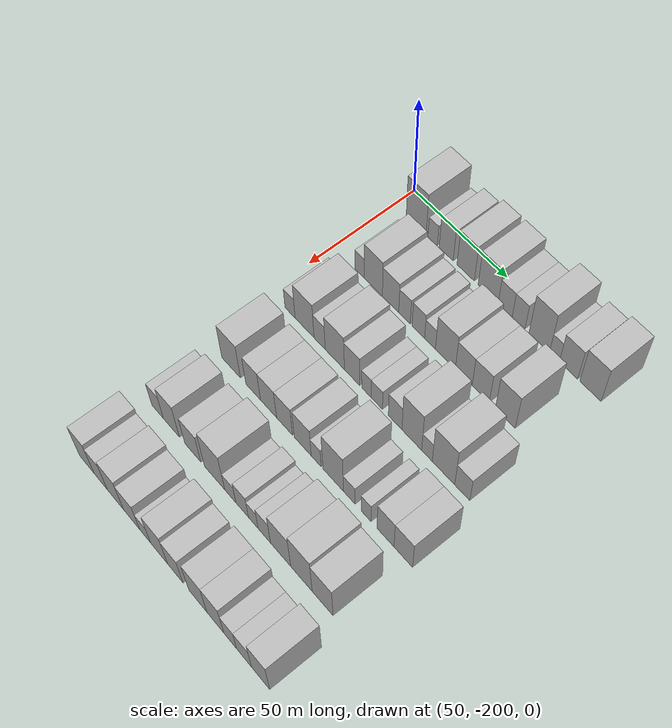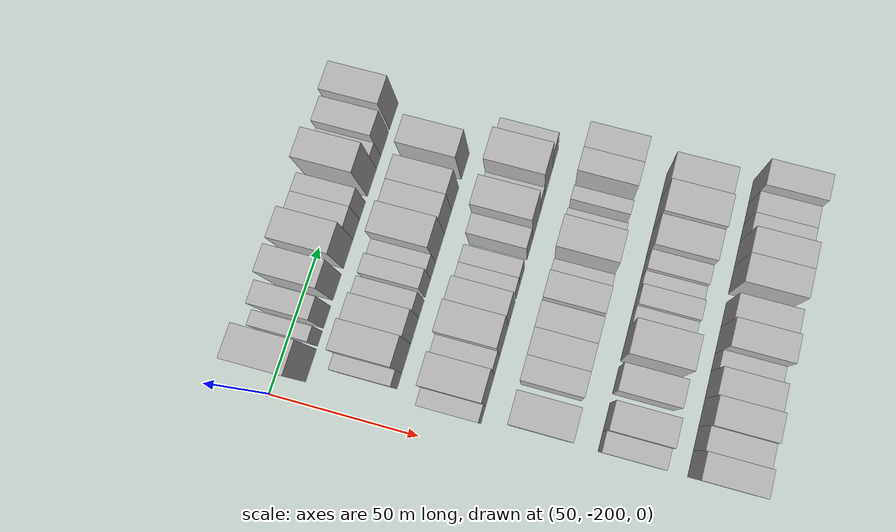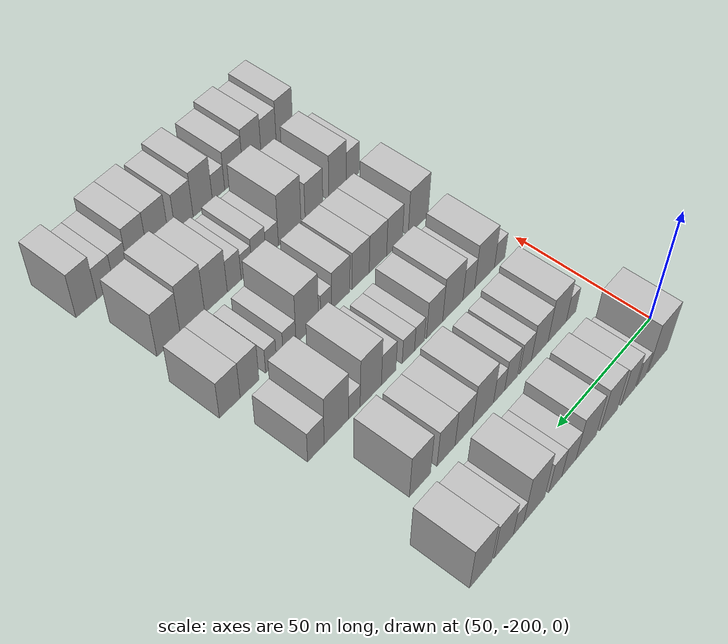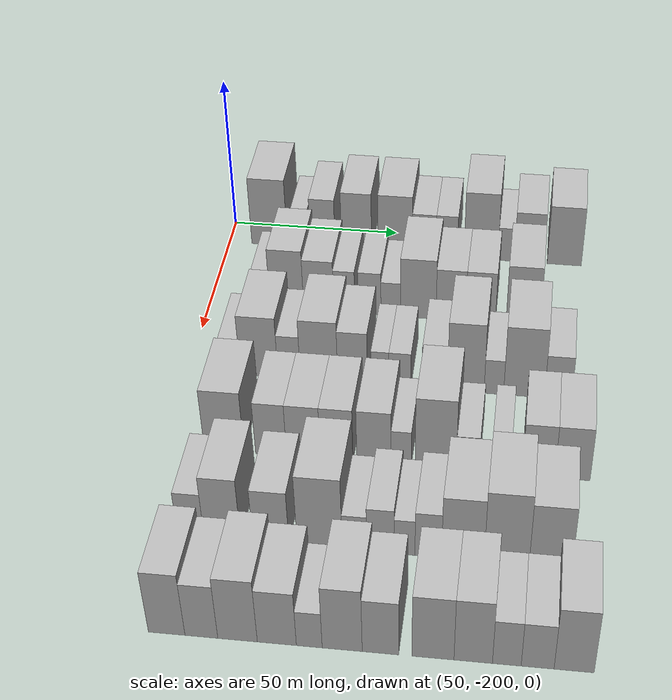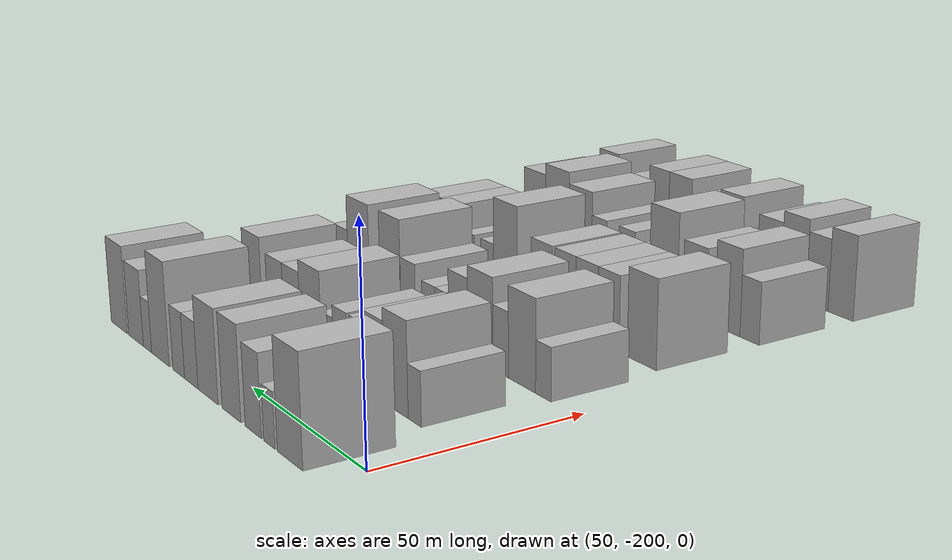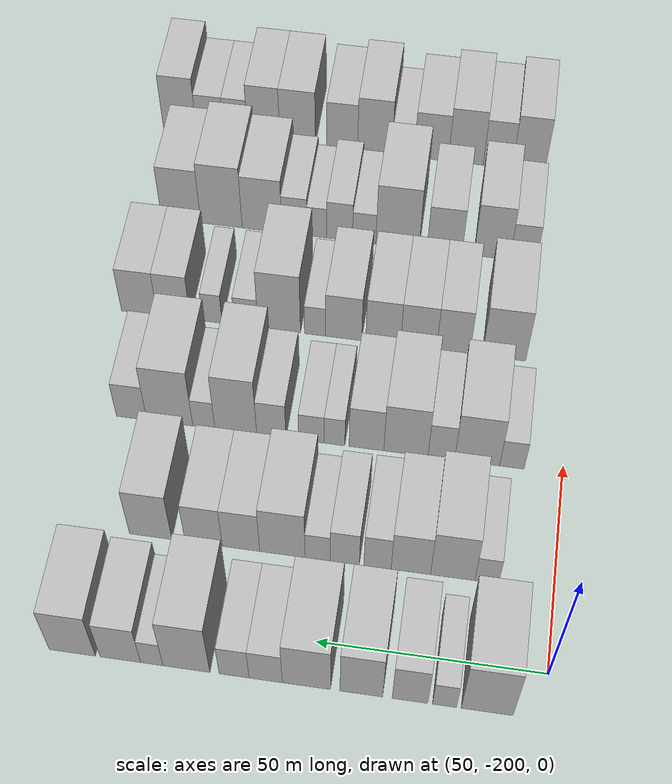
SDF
<sdf version="1.6">
 <world name="default">
  <model name="building_35">
   <static>1</static>
   <pose>50.0000 -187.7629 0 0.000000 0.000000 0.000000</pose>
   <link name="link">
    <pose>0 0 12.00 0 0 0</pose>
    <collision name="collision"><geometry><box><size>20.0000 10.9252 24.0000</size></box></geometry></collision>
    <visual name="visual">
     <cast_shadows>0</cast_shadows>
     <geometry><box><size>20.0000 10.9252 24.0000</size></box></geometry>
     <material>
      <script>
       <uri>model://HANNAS_wall/materials/scripts</uri>
       <uri>model://HANNAS_wall/materials/textures</uri>
       <name>vrc/HANNAS_wall</name>
      </script>
     </material>
    </visual>
   </link>
  </model>
  <model name="building_36">
   <static>1</static>
   <pose>50.0000 -178.7702 0 0.000000 0.000000 0.000000</pose>
   <link name="link">
    <pose>0 0 6.00 0 0 0</pose>
    <collision name="collision"><geometry><box><size>20.0000 5.0601 12.0000</size></box></geometry></collision>
    <visual name="visual">
     <cast_shadows>0</cast_shadows>
     <geometry><box><size>20.0000 5.0601 12.0000</size></box></geometry>
     <material>
      <script>
       <uri>model://HANNAS_wall/materials/scripts</uri>
       <uri>model://HANNAS_wall/materials/textures</uri>
       <name>vrc/HANNAS_wall</name>
      </script>
     </material>
    </visual>
   </link>
  </model>
  <model name="building_37">
   <static>1</static>
   <pose>50.0000 -171.4633 0 0.000000 0.000000 0.000000</pose>
   <link name="link">
    <pose>0 0 9.00 0 0 0</pose>
    <collision name="collision"><geometry><box><size>20.0000 7.5538 18.0000</size></box></geometry></collision>
    <visual name="visual">
     <cast_shadows>0</cast_shadows>
     <geometry><box><size>20.0000 7.5538 18.0000</size></box></geometry>
     <material>
      <script>
       <uri>model://HANNAS_wall/materials/scripts</uri>
       <uri>model://HANNAS_wall/materials/textures</uri>
       <name>vrc/HANNAS_wall</name>
      </script>
     </material>
    </visual>
   </link>
  </model>
  <model name="building_38">
   <static>1</static>
   <pose>50.0000 -161.1294 0 0.000000 0.000000 0.000000</pose>
   <link name="link">
    <pose>0 0 10.50 0 0 0</pose>
    <collision name="collision"><geometry><box><size>20.0000 9.1141 21.0000</size></box></geometry></collision>
    <visual name="visual">
     <cast_shadows>0</cast_shadows>
     <geometry><box><size>20.0000 9.1141 21.0000</size></box></geometry>
     <material>
      <script>
       <uri>model://HANNAS_wall/materials/scripts</uri>
       <uri>model://HANNAS_wall/materials/textures</uri>
       <name>vrc/HANNAS_wall</name>
      </script>
     </material>
    </visual>
   </link>
  </model>
  <model name="building_39">
   <static>1</static>
   <pose>50.0000 -149.4049 0 0.000000 0.000000 0.000000</pose>
   <link name="link">
    <pose>0 0 10.50 0 0 0</pose>
    <collision name="collision"><geometry><box><size>20.0000 10.3349 21.0000</size></box></geometry></collision>
    <visual name="visual">
     <cast_shadows>0</cast_shadows>
     <geometry><box><size>20.0000 10.3349 21.0000</size></box></geometry>
     <material>
      <script>
       <uri>model://HANNAS_wall/materials/scripts</uri>
       <uri>model://HANNAS_wall/materials/textures</uri>
       <name>vrc/HANNAS_wall</name>
      </script>
     </material>
    </visual>
   </link>
  </model>
  <model name="building_40">
   <static>1</static>
   <pose>50.0000 -140.6643 0 0.000000 0.000000 0.000000</pose>
   <link name="link">
    <pose>0 0 7.50 0 0 0</pose>
    <collision name="collision"><geometry><box><size>20.0000 7.1463 15.0000</size></box></geometry></collision>
    <visual name="visual">
     <cast_shadows>0</cast_shadows>
     <geometry><box><size>20.0000 7.1463 15.0000</size></box></geometry>
     <material>
      <script>
       <uri>model://HANNAS_wall/materials/scripts</uri>
       <uri>model://HANNAS_wall/materials/textures</uri>
       <name>vrc/HANNAS_wall</name>
      </script>
     </material>
    </visual>
   </link>
  </model>
  <model name="building_41">
   <static>1</static>
   <pose>50.0000 -133.8740 0 0.000000 0.000000 0.000000</pose>
   <link name="link">
    <pose>0 0 7.50 0 0 0</pose>
    <collision name="collision"><geometry><box><size>20.0000 6.4342 15.0000</size></box></geometry></collision>
    <visual name="visual">
     <cast_shadows>0</cast_shadows>
     <geometry><box><size>20.0000 6.4342 15.0000</size></box></geometry>
     <material>
      <script>
       <uri>model://HANNAS_wall/materials/scripts</uri>
       <uri>model://HANNAS_wall/materials/textures</uri>
       <name>vrc/HANNAS_wall</name>
      </script>
     </material>
    </visual>
   </link>
  </model>
  <model name="building_42">
   <static>1</static>
   <pose>50.0000 -123.5805 0 0.000000 0.000000 0.000000</pose>
   <link name="link">
    <pose>0 0 12.00 0 0 0</pose>
    <collision name="collision"><geometry><box><size>20.0000 10.1528 24.0000</size></box></geometry></collision>
    <visual name="visual">
     <cast_shadows>0</cast_shadows>
     <geometry><box><size>20.0000 10.1528 24.0000</size></box></geometry>
     <material>
      <script>
       <uri>model://HANNAS_wall/materials/scripts</uri>
       <uri>model://HANNAS_wall/materials/textures</uri>
       <name>vrc/HANNAS_wall</name>
      </script>
     </material>
    </visual>
   </link>
  </model>
  <model name="building_43">
   <static>1</static>
   <pose>50.0000 -116.0681 0 0.000000 0.000000 0.000000</pose>
   <link name="link">
    <pose>0 0 6.00 0 0 0</pose>
    <collision name="collision"><geometry><box><size>20.0000 4.8721 12.0000</size></box></geometry></collision>
    <visual name="visual">
     <cast_shadows>0</cast_shadows>
     <geometry><box><size>20.0000 4.8721 12.0000</size></box></geometry>
     <material>
      <script>
       <uri>model://HANNAS_wall/materials/scripts</uri>
       <uri>model://HANNAS_wall/materials/textures</uri>
       <name>vrc/HANNAS_wall</name>
      </script>
     </material>
    </visual>
   </link>
  </model>
  <model name="building_44">
   <static>1</static>
   <pose>50.0000 -109.1987 0 0.000000 0.000000 0.000000</pose>
   <link name="link">
    <pose>0 0 9.00 0 0 0</pose>
    <collision name="collision"><geometry><box><size>20.0000 8.8667 18.0000</size></box></geometry></collision>
    <visual name="visual">
     <cast_shadows>0</cast_shadows>
     <geometry><box><size>20.0000 8.8667 18.0000</size></box></geometry>
     <material>
      <script>
       <uri>model://HANNAS_wall/materials/scripts</uri>
       <uri>model://HANNAS_wall/materials/textures</uri>
       <name>vrc/HANNAS_wall</name>
      </script>
     </material>
    </visual>
   </link>
  </model>
  <model name="building_45">
   <static>1</static>
   <pose>50.0000 -98.6974 0 0.000000 0.000000 0.000000</pose>
   <link name="link">
    <pose>0 0 10.50 0 0 0</pose>
    <collision name="collision"><geometry><box><size>20.0000 10.1359 21.0000</size></box></geometry></collision>
    <visual name="visual">
     <cast_shadows>0</cast_shadows>
     <geometry><box><size>20.0000 10.1359 21.0000</size></box></geometry>
     <material>
      <script>
       <uri>model://HANNAS_wall/materials/scripts</uri>
       <uri>model://HANNAS_wall/materials/textures</uri>
       <name>vrc/HANNAS_wall</name>
      </script>
     </material>
    </visual>
   </link>
  </model>
  <model name="building_149">
   <static>1</static>
   <pose>79.0000 -185.0536 0 0.000000 0.000000 0.000000</pose>
   <link name="link">
    <pose>0 0 6.00 0 0 0</pose>
    <collision name="collision"><geometry><box><size>20.0000 5.2560 12.0000</size></box></geometry></collision>
    <visual name="visual">
     <cast_shadows>0</cast_shadows>
     <geometry><box><size>20.0000 5.2560 12.0000</size></box></geometry>
     <material>
      <script>
       <uri>model://HANNAS_wall/materials/scripts</uri>
       <uri>model://HANNAS_wall/materials/textures</uri>
       <name>vrc/HANNAS_wall</name>
      </script>
     </material>
    </visual>
   </link>
  </model>
  <model name="building_150">
   <static>1</static>
   <pose>79.0000 -177.5264 0 0.000000 0.000000 0.000000</pose>
   <link name="link">
    <pose>0 0 10.50 0 0 0</pose>
    <collision name="collision"><geometry><box><size>20.0000 9.7983 21.0000</size></box></geometry></collision>
    <visual name="visual">
     <cast_shadows>0</cast_shadows>
     <geometry><box><size>20.0000 9.7983 21.0000</size></box></geometry>
     <material>
      <script>
       <uri>model://HANNAS_wall/materials/scripts</uri>
       <uri>model://HANNAS_wall/materials/textures</uri>
       <name>vrc/HANNAS_wall</name>
      </script>
     </material>
    </visual>
   </link>
  </model>
  <model name="building_151">
   <static>1</static>
   <pose>79.0000 -168.2551 0 0.000000 0.000000 0.000000</pose>
   <link name="link">
    <pose>0 0 9.00 0 0 0</pose>
    <collision name="collision"><geometry><box><size>20.0000 8.7443 18.0000</size></box></geometry></collision>
    <visual name="visual">
     <cast_shadows>0</cast_shadows>
     <geometry><box><size>20.0000 8.7443 18.0000</size></box></geometry>
     <material>
      <script>
       <uri>model://HANNAS_wall/materials/scripts</uri>
       <uri>model://HANNAS_wall/materials/textures</uri>
       <name>vrc/HANNAS_wall</name>
      </script>
     </material>
    </visual>
   </link>
  </model>
  <model name="building_152">
   <static>1</static>
   <pose>79.0000 -160.8396 0 0.000000 0.000000 0.000000</pose>
   <link name="link">
    <pose>0 0 7.50 0 0 0</pose>
    <collision name="collision"><geometry><box><size>20.0000 6.0868 15.0000</size></box></geometry></collision>
    <visual name="visual">
     <cast_shadows>0</cast_shadows>
     <geometry><box><size>20.0000 6.0868 15.0000</size></box></geometry>
     <material>
      <script>
       <uri>model://HANNAS_wall/materials/scripts</uri>
       <uri>model://HANNAS_wall/materials/textures</uri>
       <name>vrc/HANNAS_wall</name>
      </script>
     </material>
    </visual>
   </link>
  </model>
  <model name="building_153">
   <static>1</static>
   <pose>79.0000 -153.5303 0 0.000000 0.000000 0.000000</pose>
   <link name="link">
    <pose>0 0 7.50 0 0 0</pose>
    <collision name="collision"><geometry><box><size>20.0000 6.5317 15.0000</size></box></geometry></collision>
    <visual name="visual">
     <cast_shadows>0</cast_shadows>
     <geometry><box><size>20.0000 6.5317 15.0000</size></box></geometry>
     <material>
      <script>
       <uri>model://HANNAS_wall/materials/scripts</uri>
       <uri>model://HANNAS_wall/materials/textures</uri>
       <name>vrc/HANNAS_wall</name>
      </script>
     </material>
    </visual>
   </link>
  </model>
  <model name="building_154">
   <static>1</static>
   <pose>79.0000 -147.4696 0 0.000000 0.000000 0.000000</pose>
   <link name="link">
    <pose>0 0 6.00 0 0 0</pose>
    <collision name="collision"><geometry><box><size>20.0000 5.5898 12.0000</size></box></geometry></collision>
    <visual name="visual">
     <cast_shadows>0</cast_shadows>
     <geometry><box><size>20.0000 5.5898 12.0000</size></box></geometry>
     <material>
      <script>
       <uri>model://HANNAS_wall/materials/scripts</uri>
       <uri>model://HANNAS_wall/materials/textures</uri>
       <name>vrc/HANNAS_wall</name>
      </script>
     </material>
    </visual>
   </link>
  </model>
  <model name="building_155">
   <static>1</static>
   <pose>79.0000 -139.5721 0 0.000000 0.000000 0.000000</pose>
   <link name="link">
    <pose>0 0 10.50 0 0 0</pose>
    <collision name="collision"><geometry><box><size>20.0000 10.2052 21.0000</size></box></geometry></collision>
    <visual name="visual">
     <cast_shadows>0</cast_shadows>
     <geometry><box><size>20.0000 10.2052 21.0000</size></box></geometry>
     <material>
      <script>
       <uri>model://HANNAS_wall/materials/scripts</uri>
       <uri>model://HANNAS_wall/materials/textures</uri>
       <name>vrc/HANNAS_wall</name>
      </script>
     </material>
    </visual>
   </link>
  </model>
  <model name="building_156">
   <static>1</static>
   <pose>79.0000 -130.2316 0 0.000000 0.000000 0.000000</pose>
   <link name="link">
    <pose>0 0 9.00 0 0 0</pose>
    <collision name="collision"><geometry><box><size>20.0000 8.4758 18.0000</size></box></geometry></collision>
    <visual name="visual">
     <cast_shadows>0</cast_shadows>
     <geometry><box><size>20.0000 8.4758 18.0000</size></box></geometry>
     <material>
      <script>
       <uri>model://HANNAS_wall/materials/scripts</uri>
       <uri>model://HANNAS_wall/materials/textures</uri>
       <name>vrc/HANNAS_wall</name>
      </script>
     </material>
    </visual>
   </link>
  </model>
  <model name="building_157">
   <static>1</static>
   <pose>79.0000 -121.7674 0 0.000000 0.000000 0.000000</pose>
   <link name="link">
    <pose>0 0 9.00 0 0 0</pose>
    <collision name="collision"><geometry><box><size>20.0000 8.4525 18.0000</size></box></geometry></collision>
    <visual name="visual">
     <cast_shadows>0</cast_shadows>
     <geometry><box><size>20.0000 8.4525 18.0000</size></box></geometry>
     <material>
      <script>
       <uri>model://HANNAS_wall/materials/scripts</uri>
       <uri>model://HANNAS_wall/materials/textures</uri>
       <name>vrc/HANNAS_wall</name>
      </script>
     </material>
    </visual>
   </link>
  </model>
  <model name="building_158">
   <static>1</static>
   <pose>79.0000 -109.7116 0 0.000000 0.000000 0.000000</pose>
   <link name="link">
    <pose>0 0 10.50 0 0 0</pose>
    <collision name="collision"><geometry><box><size>20.0000 9.6591 21.0000</size></box></geometry></collision>
    <visual name="visual">
     <cast_shadows>0</cast_shadows>
     <geometry><box><size>20.0000 9.6591 21.0000</size></box></geometry>
     <material>
      <script>
       <uri>model://HANNAS_wall/materials/scripts</uri>
       <uri>model://HANNAS_wall/materials/textures</uri>
       <name>vrc/HANNAS_wall</name>
      </script>
     </material>
    </visual>
   </link>
  </model>
  <model name="building_254">
   <static>1</static>
   <pose>108.0000 -188.2646 0 0.000000 0.000000 0.000000</pose>
   <link name="link">
    <pose>0 0 6.00 0 0 0</pose>
    <collision name="collision"><geometry><box><size>20.0000 5.6431 12.0000</size></box></geometry></collision>
    <visual name="visual">
     <cast_shadows>0</cast_shadows>
     <geometry><box><size>20.0000 5.6431 12.0000</size></box></geometry>
     <material>
      <script>
       <uri>model://HANNAS_wall/materials/scripts</uri>
       <uri>model://HANNAS_wall/materials/textures</uri>
       <name>vrc/HANNAS_wall</name>
      </script>
     </material>
    </visual>
   </link>
  </model>
  <model name="building_255">
   <static>1</static>
   <pose>108.0000 -180.2350 0 0.000000 0.000000 0.000000</pose>
   <link name="link">
    <pose>0 0 10.50 0 0 0</pose>
    <collision name="collision"><geometry><box><size>20.0000 10.4162 21.0000</size></box></geometry></collision>
    <visual name="visual">
     <cast_shadows>0</cast_shadows>
     <geometry><box><size>20.0000 10.4162 21.0000</size></box></geometry>
     <material>
      <script>
       <uri>model://HANNAS_wall/materials/scripts</uri>
       <uri>model://HANNAS_wall/materials/textures</uri>
       <name>vrc/HANNAS_wall</name>
      </script>
     </material>
    </visual>
   </link>
  </model>
  <model name="building_256">
   <static>1</static>
   <pose>108.0000 -171.9533 0 0.000000 0.000000 0.000000</pose>
   <link name="link">
    <pose>0 0 7.50 0 0 0</pose>
    <collision name="collision"><geometry><box><size>20.0000 6.1472 15.0000</size></box></geometry></collision>
    <visual name="visual">
     <cast_shadows>0</cast_shadows>
     <geometry><box><size>20.0000 6.1472 15.0000</size></box></geometry>
     <material>
      <script>
       <uri>model://HANNAS_wall/materials/scripts</uri>
       <uri>model://HANNAS_wall/materials/textures</uri>
       <name>vrc/HANNAS_wall</name>
      </script>
     </material>
    </visual>
   </link>
  </model>
  <model name="building_257">
   <static>1</static>
   <pose>108.0000 -163.7430 0 0.000000 0.000000 0.000000</pose>
   <link name="link">
    <pose>0 0 10.50 0 0 0</pose>
    <collision name="collision"><geometry><box><size>20.0000 10.2735 21.0000</size></box></geometry></collision>
    <visual name="visual">
     <cast_shadows>0</cast_shadows>
     <geometry><box><size>20.0000 10.2735 21.0000</size></box></geometry>
     <material>
      <script>
       <uri>model://HANNAS_wall/materials/scripts</uri>
       <uri>model://HANNAS_wall/materials/textures</uri>
       <name>vrc/HANNAS_wall</name>
      </script>
     </material>
    </visual>
   </link>
  </model>
  <model name="building_258">
   <static>1</static>
   <pose>108.0000 -154.5478 0 0.000000 0.000000 0.000000</pose>
   <link name="link">
    <pose>0 0 9.00 0 0 0</pose>
    <collision name="collision"><geometry><box><size>20.0000 8.1169 18.0000</size></box></geometry></collision>
    <visual name="visual">
     <cast_shadows>0</cast_shadows>
     <geometry><box><size>20.0000 8.1169 18.0000</size></box></geometry>
     <material>
      <script>
       <uri>model://HANNAS_wall/materials/scripts</uri>
       <uri>model://HANNAS_wall/materials/textures</uri>
       <name>vrc/HANNAS_wall</name>
      </script>
     </material>
    </visual>
   </link>
  </model>
  <model name="building_259">
   <static>1</static>
   <pose>108.0000 -147.0676 0 0.000000 0.000000 0.000000</pose>
   <link name="link">
    <pose>0 0 6.00 0 0 0</pose>
    <collision name="collision"><geometry><box><size>20.0000 4.8435 12.0000</size></box></geometry></collision>
    <visual name="visual">
     <cast_shadows>0</cast_shadows>
     <geometry><box><size>20.0000 4.8435 12.0000</size></box></geometry>
     <material>
      <script>
       <uri>model://HANNAS_wall/materials/scripts</uri>
       <uri>model://HANNAS_wall/materials/textures</uri>
       <name>vrc/HANNAS_wall</name>
      </script>
     </material>
    </visual>
   </link>
  </model>
  <model name="building_260">
   <static>1</static>
   <pose>108.0000 -141.6626 0 0.000000 0.000000 0.000000</pose>
   <link name="link">
    <pose>0 0 6.00 0 0 0</pose>
    <collision name="collision"><geometry><box><size>20.0000 5.9664 12.0000</size></box></geometry></collision>
    <visual name="visual">
     <cast_shadows>0</cast_shadows>
     <geometry><box><size>20.0000 5.9664 12.0000</size></box></geometry>
     <material>
      <script>
       <uri>model://HANNAS_wall/materials/scripts</uri>
       <uri>model://HANNAS_wall/materials/textures</uri>
       <name>vrc/HANNAS_wall</name>
      </script>
     </material>
    </visual>
   </link>
  </model>
  <model name="building_261">
   <static>1</static>
   <pose>108.0000 -132.2307 0 0.000000 0.000000 0.000000</pose>
   <link name="link">
    <pose>0 0 7.50 0 0 0</pose>
    <collision name="collision"><geometry><box><size>20.0000 6.8974 15.0000</size></box></geometry></collision>
    <visual name="visual">
     <cast_shadows>0</cast_shadows>
     <geometry><box><size>20.0000 6.8974 15.0000</size></box></geometry>
     <material>
      <script>
       <uri>model://HANNAS_wall/materials/scripts</uri>
       <uri>model://HANNAS_wall/materials/textures</uri>
       <name>vrc/HANNAS_wall</name>
      </script>
     </material>
    </visual>
   </link>
  </model>
  <model name="building_262">
   <static>1</static>
   <pose>108.0000 -123.8345 0 0.000000 0.000000 0.000000</pose>
   <link name="link">
    <pose>0 0 12.00 0 0 0</pose>
    <collision name="collision"><geometry><box><size>20.0000 9.8950 24.0000</size></box></geometry></collision>
    <visual name="visual">
     <cast_shadows>0</cast_shadows>
     <geometry><box><size>20.0000 9.8950 24.0000</size></box></geometry>
     <material>
      <script>
       <uri>model://HANNAS_wall/materials/scripts</uri>
       <uri>model://HANNAS_wall/materials/textures</uri>
       <name>vrc/HANNAS_wall</name>
      </script>
     </material>
    </visual>
   </link>
  </model>
  <model name="building_263">
   <static>1</static>
   <pose>108.0000 -116.2601 0 0.000000 0.000000 0.000000</pose>
   <link name="link">
    <pose>0 0 6.00 0 0 0</pose>
    <collision name="collision"><geometry><box><size>20.0000 5.2538 12.0000</size></box></geometry></collision>
    <visual name="visual">
     <cast_shadows>0</cast_shadows>
     <geometry><box><size>20.0000 5.2538 12.0000</size></box></geometry>
     <material>
      <script>
       <uri>model://HANNAS_wall/materials/scripts</uri>
       <uri>model://HANNAS_wall/materials/textures</uri>
       <name>vrc/HANNAS_wall</name>
      </script>
     </material>
    </visual>
   </link>
  </model>
  <model name="building_264">
   <static>1</static>
   <pose>108.0000 -108.1545 0 0.000000 0.000000 0.000000</pose>
   <link name="link">
    <pose>0 0 12.00 0 0 0</pose>
    <collision name="collision"><geometry><box><size>20.0000 10.9574 24.0000</size></box></geometry></collision>
    <visual name="visual">
     <cast_shadows>0</cast_shadows>
     <geometry><box><size>20.0000 10.9574 24.0000</size></box></geometry>
     <material>
      <script>
       <uri>model://HANNAS_wall/materials/scripts</uri>
       <uri>model://HANNAS_wall/materials/textures</uri>
       <name>vrc/HANNAS_wall</name>
      </script>
     </material>
    </visual>
   </link>
  </model>
  <model name="building_265">
   <static>1</static>
   <pose>108.0000 -99.0480 0 0.000000 0.000000 0.000000</pose>
   <link name="link">
    <pose>0 0 7.50 0 0 0</pose>
    <collision name="collision"><geometry><box><size>20.0000 7.2558 15.0000</size></box></geometry></collision>
    <visual name="visual">
     <cast_shadows>0</cast_shadows>
     <geometry><box><size>20.0000 7.2558 15.0000</size></box></geometry>
     <material>
      <script>
       <uri>model://HANNAS_wall/materials/scripts</uri>
       <uri>model://HANNAS_wall/materials/textures</uri>
       <name>vrc/HANNAS_wall</name>
      </script>
     </material>
    </visual>
   </link>
  </model>
  <model name="building_360">
   <static>1</static>
   <pose>137.0000 -184.0254 0 0.000000 0.000000 0.000000</pose>
   <link name="link">
    <pose>0 0 10.50 0 0 0</pose>
    <collision name="collision"><geometry><box><size>20.0000 10.4275 21.0000</size></box></geometry></collision>
    <visual name="visual">
     <cast_shadows>0</cast_shadows>
     <geometry><box><size>20.0000 10.4275 21.0000</size></box></geometry>
     <material>
      <script>
       <uri>model://HANNAS_wall/materials/scripts</uri>
       <uri>model://HANNAS_wall/materials/textures</uri>
       <name>vrc/HANNAS_wall</name>
      </script>
     </material>
    </visual>
   </link>
  </model>
  <model name="building_361">
   <static>1</static>
   <pose>137.0000 -171.7844 0 0.000000 0.000000 0.000000</pose>
   <link name="link">
    <pose>0 0 9.00 0 0 0</pose>
    <collision name="collision"><geometry><box><size>20.0000 8.0544 18.0000</size></box></geometry></collision>
    <visual name="visual">
     <cast_shadows>0</cast_shadows>
     <geometry><box><size>20.0000 8.0544 18.0000</size></box></geometry>
     <material>
      <script>
       <uri>model://HANNAS_wall/materials/scripts</uri>
       <uri>model://HANNAS_wall/materials/textures</uri>
       <name>vrc/HANNAS_wall</name>
      </script>
     </material>
    </visual>
   </link>
  </model>
  <model name="building_362">
   <static>1</static>
   <pose>137.0000 -163.3893 0 0.000000 0.000000 0.000000</pose>
   <link name="link">
    <pose>0 0 9.00 0 0 0</pose>
    <collision name="collision"><geometry><box><size>20.0000 8.7358 18.0000</size></box></geometry></collision>
    <visual name="visual">
     <cast_shadows>0</cast_shadows>
     <geometry><box><size>20.0000 8.7358 18.0000</size></box></geometry>
     <material>
      <script>
       <uri>model://HANNAS_wall/materials/scripts</uri>
       <uri>model://HANNAS_wall/materials/textures</uri>
       <name>vrc/HANNAS_wall</name>
      </script>
     </material>
    </visual>
   </link>
  </model>
  <model name="building_363">
   <static>1</static>
   <pose>137.0000 -154.7800 0 0.000000 0.000000 0.000000</pose>
   <link name="link">
    <pose>0 0 9.00 0 0 0</pose>
    <collision name="collision"><geometry><box><size>20.0000 8.4828 18.0000</size></box></geometry></collision>
    <visual name="visual">
     <cast_shadows>0</cast_shadows>
     <geometry><box><size>20.0000 8.4828 18.0000</size></box></geometry>
     <material>
      <script>
       <uri>model://HANNAS_wall/materials/scripts</uri>
       <uri>model://HANNAS_wall/materials/textures</uri>
       <name>vrc/HANNAS_wall</name>
      </script>
     </material>
    </visual>
   </link>
  </model>
  <model name="building_364">
   <static>1</static>
   <pose>137.0000 -145.1321 0 0.000000 0.000000 0.000000</pose>
   <link name="link">
    <pose>0 0 9.00 0 0 0</pose>
    <collision name="collision"><geometry><box><size>20.0000 8.8131 18.0000</size></box></geometry></collision>
    <visual name="visual">
     <cast_shadows>0</cast_shadows>
     <geometry><box><size>20.0000 8.8131 18.0000</size></box></geometry>
     <material>
      <script>
       <uri>model://HANNAS_wall/materials/scripts</uri>
       <uri>model://HANNAS_wall/materials/textures</uri>
       <name>vrc/HANNAS_wall</name>
      </script>
     </material>
    </visual>
   </link>
  </model>
  <model name="building_365">
   <static>1</static>
   <pose>137.0000 -138.1507 0 0.000000 0.000000 0.000000</pose>
   <link name="link">
    <pose>0 0 6.00 0 0 0</pose>
    <collision name="collision"><geometry><box><size>20.0000 5.1497 12.0000</size></box></geometry></collision>
    <visual name="visual">
     <cast_shadows>0</cast_shadows>
     <geometry><box><size>20.0000 5.1497 12.0000</size></box></geometry>
     <material>
      <script>
       <uri>model://HANNAS_wall/materials/scripts</uri>
       <uri>model://HANNAS_wall/materials/textures</uri>
       <name>vrc/HANNAS_wall</name>
      </script>
     </material>
    </visual>
   </link>
  </model>
  <model name="building_366">
   <static>1</static>
   <pose>137.0000 -129.3474 0 0.000000 0.000000 0.000000</pose>
   <link name="link">
    <pose>0 0 12.00 0 0 0</pose>
    <collision name="collision"><geometry><box><size>20.0000 10.4568 24.0000</size></box></geometry></collision>
    <visual name="visual">
     <cast_shadows>0</cast_shadows>
     <geometry><box><size>20.0000 10.4568 24.0000</size></box></geometry>
     <material>
      <script>
       <uri>model://HANNAS_wall/materials/scripts</uri>
       <uri>model://HANNAS_wall/materials/textures</uri>
       <name>vrc/HANNAS_wall</name>
      </script>
     </material>
    </visual>
   </link>
  </model>
  <model name="building_367">
   <static>1</static>
   <pose>137.0000 -121.1845 0 0.000000 0.000000 0.000000</pose>
   <link name="link">
    <pose>0 0 6.00 0 0 0</pose>
    <collision name="collision"><geometry><box><size>20.0000 5.8690 12.0000</size></box></geometry></collision>
    <visual name="visual">
     <cast_shadows>0</cast_shadows>
     <geometry><box><size>20.0000 5.8690 12.0000</size></box></geometry>
     <material>
      <script>
       <uri>model://HANNAS_wall/materials/scripts</uri>
       <uri>model://HANNAS_wall/materials/textures</uri>
       <name>vrc/HANNAS_wall</name>
      </script>
     </material>
    </visual>
   </link>
  </model>
  <model name="building_368">
   <static>1</static>
   <pose>137.0000 -112.8129 0 0.000000 0.000000 0.000000</pose>
   <link name="link">
    <pose>0 0 6.00 0 0 0</pose>
    <collision name="collision"><geometry><box><size>20.0000 4.8742 12.0000</size></box></geometry></collision>
    <visual name="visual">
     <cast_shadows>0</cast_shadows>
     <geometry><box><size>20.0000 4.8742 12.0000</size></box></geometry>
     <material>
      <script>
       <uri>model://HANNAS_wall/materials/scripts</uri>
       <uri>model://HANNAS_wall/materials/textures</uri>
       <name>vrc/HANNAS_wall</name>
      </script>
     </material>
    </visual>
   </link>
  </model>
  <model name="building_369">
   <static>1</static>
   <pose>137.0000 -103.2546 0 0.000000 0.000000 0.000000</pose>
   <link name="link">
    <pose>0 0 9.00 0 0 0</pose>
    <collision name="collision"><geometry><box><size>20.0000 8.2423 18.0000</size></box></geometry></collision>
    <visual name="visual">
     <cast_shadows>0</cast_shadows>
     <geometry><box><size>20.0000 8.2423 18.0000</size></box></geometry>
     <material>
      <script>
       <uri>model://HANNAS_wall/materials/scripts</uri>
       <uri>model://HANNAS_wall/materials/textures</uri>
       <name>vrc/HANNAS_wall</name>
      </script>
     </material>
    </visual>
   </link>
  </model>
  <model name="building_370">
   <static>1</static>
   <pose>137.0000 -94.6780 0 0.000000 0.000000 0.000000</pose>
   <link name="link">
    <pose>0 0 9.00 0 0 0</pose>
    <collision name="collision"><geometry><box><size>20.0000 8.9110 18.0000</size></box></geometry></collision>
    <visual name="visual">
     <cast_shadows>0</cast_shadows>
     <geometry><box><size>20.0000 8.9110 18.0000</size></box></geometry>
     <material>
      <script>
       <uri>model://HANNAS_wall/materials/scripts</uri>
       <uri>model://HANNAS_wall/materials/textures</uri>
       <name>vrc/HANNAS_wall</name>
      </script>
     </material>
    </visual>
   </link>
  </model>
  <model name="building_477">
   <static>1</static>
   <pose>166.0000 -186.3803 0 0.000000 0.000000 0.000000</pose>
   <link name="link">
    <pose>0 0 7.50 0 0 0</pose>
    <collision name="collision"><geometry><box><size>20.0000 6.6028 15.0000</size></box></geometry></collision>
    <visual name="visual">
     <cast_shadows>0</cast_shadows>
     <geometry><box><size>20.0000 6.6028 15.0000</size></box></geometry>
     <material>
      <script>
       <uri>model://HANNAS_wall/materials/scripts</uri>
       <uri>model://HANNAS_wall/materials/textures</uri>
       <name>vrc/HANNAS_wall</name>
      </script>
     </material>
    </visual>
   </link>
  </model>
  <model name="building_478">
   <static>1</static>
   <pose>166.0000 -178.5712 0 0.000000 0.000000 0.000000</pose>
   <link name="link">
    <pose>0 0 10.50 0 0 0</pose>
    <collision name="collision"><geometry><box><size>20.0000 9.0154 21.0000</size></box></geometry></collision>
    <visual name="visual">
     <cast_shadows>0</cast_shadows>
     <geometry><box><size>20.0000 9.0154 21.0000</size></box></geometry>
     <material>
      <script>
       <uri>model://HANNAS_wall/materials/scripts</uri>
       <uri>model://HANNAS_wall/materials/textures</uri>
       <name>vrc/HANNAS_wall</name>
      </script>
     </material>
    </visual>
   </link>
  </model>
  <model name="building_479">
   <static>1</static>
   <pose>166.0000 -166.6498 0 0.000000 0.000000 0.000000</pose>
   <link name="link">
    <pose>0 0 9.00 0 0 0</pose>
    <collision name="collision"><geometry><box><size>20.0000 8.8274 18.0000</size></box></geometry></collision>
    <visual name="visual">
     <cast_shadows>0</cast_shadows>
     <geometry><box><size>20.0000 8.8274 18.0000</size></box></geometry>
     <material>
      <script>
       <uri>model://HANNAS_wall/materials/scripts</uri>
       <uri>model://HANNAS_wall/materials/textures</uri>
       <name>vrc/HANNAS_wall</name>
      </script>
     </material>
    </visual>
   </link>
  </model>
  <model name="building_480">
   <static>1</static>
   <pose>166.0000 -154.7428 0 0.000000 0.000000 0.000000</pose>
   <link name="link">
    <pose>0 0 12.00 0 0 0</pose>
    <collision name="collision"><geometry><box><size>20.0000 10.9866 24.0000</size></box></geometry></collision>
    <visual name="visual">
     <cast_shadows>0</cast_shadows>
     <geometry><box><size>20.0000 10.9866 24.0000</size></box></geometry>
     <material>
      <script>
       <uri>model://HANNAS_wall/materials/scripts</uri>
       <uri>model://HANNAS_wall/materials/textures</uri>
       <name>vrc/HANNAS_wall</name>
      </script>
     </material>
    </visual>
   </link>
  </model>
  <model name="building_481">
   <static>1</static>
   <pose>166.0000 -146.2857 0 0.000000 0.000000 0.000000</pose>
   <link name="link">
    <pose>0 0 6.00 0 0 0</pose>
    <collision name="collision"><geometry><box><size>20.0000 5.9277 12.0000</size></box></geometry></collision>
    <visual name="visual">
     <cast_shadows>0</cast_shadows>
     <geometry><box><size>20.0000 5.9277 12.0000</size></box></geometry>
     <material>
      <script>
       <uri>model://HANNAS_wall/materials/scripts</uri>
       <uri>model://HANNAS_wall/materials/textures</uri>
       <name>vrc/HANNAS_wall</name>
      </script>
     </material>
    </visual>
   </link>
  </model>
  <model name="building_482">
   <static>1</static>
   <pose>166.0000 -140.0182 0 0.000000 0.000000 0.000000</pose>
   <link name="link">
    <pose>0 0 7.50 0 0 0</pose>
    <collision name="collision"><geometry><box><size>20.0000 6.6073 15.0000</size></box></geometry></collision>
    <visual name="visual">
     <cast_shadows>0</cast_shadows>
     <geometry><box><size>20.0000 6.6073 15.0000</size></box></geometry>
     <material>
      <script>
       <uri>model://HANNAS_wall/materials/scripts</uri>
       <uri>model://HANNAS_wall/materials/textures</uri>
       <name>vrc/HANNAS_wall</name>
      </script>
     </material>
    </visual>
   </link>
  </model>
  <model name="building_483">
   <static>1</static>
   <pose>166.0000 -134.2066 0 0.000000 0.000000 0.000000</pose>
   <link name="link">
    <pose>0 0 6.00 0 0 0</pose>
    <collision name="collision"><geometry><box><size>20.0000 5.0158 12.0000</size></box></geometry></collision>
    <visual name="visual">
     <cast_shadows>0</cast_shadows>
     <geometry><box><size>20.0000 5.0158 12.0000</size></box></geometry>
     <material>
      <script>
       <uri>model://HANNAS_wall/materials/scripts</uri>
       <uri>model://HANNAS_wall/materials/textures</uri>
       <name>vrc/HANNAS_wall</name>
      </script>
     </material>
    </visual>
   </link>
  </model>
  <model name="building_484">
   <static>1</static>
   <pose>166.0000 -128.4891 0 0.000000 0.000000 0.000000</pose>
   <link name="link">
    <pose>0 0 7.50 0 0 0</pose>
    <collision name="collision"><geometry><box><size>20.0000 6.4194 15.0000</size></box></geometry></collision>
    <visual name="visual">
     <cast_shadows>0</cast_shadows>
     <geometry><box><size>20.0000 6.4194 15.0000</size></box></geometry>
     <material>
      <script>
       <uri>model://HANNAS_wall/materials/scripts</uri>
       <uri>model://HANNAS_wall/materials/textures</uri>
       <name>vrc/HANNAS_wall</name>
      </script>
     </material>
    </visual>
   </link>
  </model>
  <model name="building_485">
   <static>1</static>
   <pose>166.0000 -120.1821 0 0.000000 0.000000 0.000000</pose>
   <link name="link">
    <pose>0 0 10.50 0 0 0</pose>
    <collision name="collision"><geometry><box><size>20.0000 10.1947 21.0000</size></box></geometry></collision>
    <visual name="visual">
     <cast_shadows>0</cast_shadows>
     <geometry><box><size>20.0000 10.1947 21.0000</size></box></geometry>
     <material>
      <script>
       <uri>model://HANNAS_wall/materials/scripts</uri>
       <uri>model://HANNAS_wall/materials/textures</uri>
       <name>vrc/HANNAS_wall</name>
      </script>
     </material>
    </visual>
   </link>
  </model>
  <model name="building_486">
   <static>1</static>
   <pose>166.0000 -109.7435 0 0.000000 0.000000 0.000000</pose>
   <link name="link">
    <pose>0 0 12.00 0 0 0</pose>
    <collision name="collision"><geometry><box><size>20.0000 10.6824 24.0000</size></box></geometry></collision>
    <visual name="visual">
     <cast_shadows>0</cast_shadows>
     <geometry><box><size>20.0000 10.6824 24.0000</size></box></geometry>
     <material>
      <script>
       <uri>model://HANNAS_wall/materials/scripts</uri>
       <uri>model://HANNAS_wall/materials/textures</uri>
       <name>vrc/HANNAS_wall</name>
      </script>
     </material>
    </visual>
   </link>
  </model>
  <model name="building_487">
   <static>1</static>
   <pose>166.0000 -99.3065 0 0.000000 0.000000 0.000000</pose>
   <link name="link">
    <pose>0 0 10.50 0 0 0</pose>
    <collision name="collision"><geometry><box><size>20.0000 10.1917 21.0000</size></box></geometry></collision>
    <visual name="visual">
     <cast_shadows>0</cast_shadows>
     <geometry><box><size>20.0000 10.1917 21.0000</size></box></geometry>
     <material>
      <script>
       <uri>model://HANNAS_wall/materials/scripts</uri>
       <uri>model://HANNAS_wall/materials/textures</uri>
       <name>vrc/HANNAS_wall</name>
      </script>
     </material>
    </visual>
   </link>
  </model>
  <model name="building_593">
   <static>1</static>
   <pose>195.0000 -185.5429 0 0.000000 0.000000 0.000000</pose>
   <link name="link">
    <pose>0 0 10.50 0 0 0</pose>
    <collision name="collision"><geometry><box><size>20.0000 8.4927 21.0000</size></box></geometry></collision>
    <visual name="visual">
     <cast_shadows>0</cast_shadows>
     <geometry><box><size>20.0000 8.4927 21.0000</size></box></geometry>
     <material>
      <script>
       <uri>model://HANNAS_wall/materials/scripts</uri>
       <uri>model://HANNAS_wall/materials/textures</uri>
       <name>vrc/HANNAS_wall</name>
      </script>
     </material>
    </visual>
   </link>
  </model>
  <model name="building_594">
   <static>1</static>
   <pose>195.0000 -177.5069 0 0.000000 0.000000 0.000000</pose>
   <link name="link">
    <pose>0 0 9.00 0 0 0</pose>
    <collision name="collision"><geometry><box><size>20.0000 7.5793 18.0000</size></box></geometry></collision>
    <visual name="visual">
     <cast_shadows>0</cast_shadows>
     <geometry><box><size>20.0000 7.5793 18.0000</size></box></geometry>
     <material>
      <script>
       <uri>model://HANNAS_wall/materials/scripts</uri>
       <uri>model://HANNAS_wall/materials/textures</uri>
       <name>vrc/HANNAS_wall</name>
      </script>
     </material>
    </visual>
   </link>
  </model>
  <model name="building_595">
   <static>1</static>
   <pose>195.0000 -169.1644 0 0.000000 0.000000 0.000000</pose>
   <link name="link">
    <pose>0 0 10.50 0 0 0</pose>
    <collision name="collision"><geometry><box><size>20.0000 9.1057 21.0000</size></box></geometry></collision>
    <visual name="visual">
     <cast_shadows>0</cast_shadows>
     <geometry><box><size>20.0000 9.1057 21.0000</size></box></geometry>
     <material>
      <script>
       <uri>model://HANNAS_wall/materials/scripts</uri>
       <uri>model://HANNAS_wall/materials/textures</uri>
       <name>vrc/HANNAS_wall</name>
      </script>
     </material>
    </visual>
   </link>
  </model>
  <model name="building_596">
   <static>1</static>
   <pose>195.0000 -160.1437 0 0.000000 0.000000 0.000000</pose>
   <link name="link">
    <pose>0 0 9.00 0 0 0</pose>
    <collision name="collision"><geometry><box><size>20.0000 8.9356 18.0000</size></box></geometry></collision>
    <visual name="visual">
     <cast_shadows>0</cast_shadows>
     <geometry><box><size>20.0000 8.9356 18.0000</size></box></geometry>
     <material>
      <script>
       <uri>model://HANNAS_wall/materials/scripts</uri>
       <uri>model://HANNAS_wall/materials/textures</uri>
       <name>vrc/HANNAS_wall</name>
      </script>
     </material>
    </visual>
   </link>
  </model>
  <model name="building_597">
   <static>1</static>
   <pose>195.0000 -152.7299 0 0.000000 0.000000 0.000000</pose>
   <link name="link">
    <pose>0 0 6.00 0 0 0</pose>
    <collision name="collision"><geometry><box><size>20.0000 5.8920 12.0000</size></box></geometry></collision>
    <visual name="visual">
     <cast_shadows>0</cast_shadows>
     <geometry><box><size>20.0000 5.8920 12.0000</size></box></geometry>
     <material>
      <script>
       <uri>model://HANNAS_wall/materials/scripts</uri>
       <uri>model://HANNAS_wall/materials/textures</uri>
       <name>vrc/HANNAS_wall</name>
      </script>
     </material>
    </visual>
   </link>
  </model>
  <model name="building_598">
   <static>1</static>
   <pose>195.0000 -145.2344 0 0.000000 0.000000 0.000000</pose>
   <link name="link">
    <pose>0 0 10.50 0 0 0</pose>
    <collision name="collision"><geometry><box><size>20.0000 9.0990 21.0000</size></box></geometry></collision>
    <visual name="visual">
     <cast_shadows>0</cast_shadows>
     <geometry><box><size>20.0000 9.0990 21.0000</size></box></geometry>
     <material>
      <script>
       <uri>model://HANNAS_wall/materials/scripts</uri>
       <uri>model://HANNAS_wall/materials/textures</uri>
       <name>vrc/HANNAS_wall</name>
      </script>
     </material>
    </visual>
   </link>
  </model>
  <model name="building_599">
   <static>1</static>
   <pose>195.0000 -136.5656 0 0.000000 0.000000 0.000000</pose>
   <link name="link">
    <pose>0 0 9.00 0 0 0</pose>
    <collision name="collision"><geometry><box><size>20.0000 8.2386 18.0000</size></box></geometry></collision>
    <visual name="visual">
     <cast_shadows>0</cast_shadows>
     <geometry><box><size>20.0000 8.2386 18.0000</size></box></geometry>
     <material>
      <script>
       <uri>model://HANNAS_wall/materials/scripts</uri>
       <uri>model://HANNAS_wall/materials/textures</uri>
       <name>vrc/HANNAS_wall</name>
      </script>
     </material>
    </visual>
   </link>
  </model>
  <model name="building_600">
   <static>1</static>
   <pose>195.0000 -124.7177 0 0.000000 0.000000 0.000000</pose>
   <link name="link">
    <pose>0 0 10.50 0 0 0</pose>
    <collision name="collision"><geometry><box><size>20.0000 9.4572 21.0000</size></box></geometry></collision>
    <visual name="visual">
     <cast_shadows>0</cast_shadows>
     <geometry><box><size>20.0000 9.4572 21.0000</size></box></geometry>
     <material>
      <script>
       <uri>model://HANNAS_wall/materials/scripts</uri>
       <uri>model://HANNAS_wall/materials/textures</uri>
       <name>vrc/HANNAS_wall</name>
      </script>
     </material>
    </visual>
   </link>
  </model>
  <model name="building_601">
   <static>1</static>
   <pose>195.0000 -115.6810 0 0.000000 0.000000 0.000000</pose>
   <link name="link">
    <pose>0 0 10.50 0 0 0</pose>
    <collision name="collision"><geometry><box><size>20.0000 8.6161 21.0000</size></box></geometry></collision>
    <visual name="visual">
     <cast_shadows>0</cast_shadows>
     <geometry><box><size>20.0000 8.6161 21.0000</size></box></geometry>
     <material>
      <script>
       <uri>model://HANNAS_wall/materials/scripts</uri>
       <uri>model://HANNAS_wall/materials/textures</uri>
       <name>vrc/HANNAS_wall</name>
      </script>
     </material>
    </visual>
   </link>
  </model>
  <model name="building_602">
   <static>1</static>
   <pose>195.0000 -108.1710 0 0.000000 0.000000 0.000000</pose>
   <link name="link">
    <pose>0 0 7.50 0 0 0</pose>
    <collision name="collision"><geometry><box><size>20.0000 6.4041 15.0000</size></box></geometry></collision>
    <visual name="visual">
     <cast_shadows>0</cast_shadows>
     <geometry><box><size>20.0000 6.4041 15.0000</size></box></geometry>
     <material>
      <script>
       <uri>model://HANNAS_wall/materials/scripts</uri>
       <uri>model://HANNAS_wall/materials/textures</uri>
       <name>vrc/HANNAS_wall</name>
      </script>
     </material>
    </visual>
   </link>
  </model>
  <model name="building_603">
   <static>1</static>
   <pose>195.0000 -101.3112 0 0.000000 0.000000 0.000000</pose>
   <link name="link">
    <pose>0 0 7.50 0 0 0</pose>
    <collision name="collision"><geometry><box><size>20.0000 7.3154 15.0000</size></box></geometry></collision>
    <visual name="visual">
     <cast_shadows>0</cast_shadows>
     <geometry><box><size>20.0000 7.3154 15.0000</size></box></geometry>
     <material>
      <script>
       <uri>model://HANNAS_wall/materials/scripts</uri>
       <uri>model://HANNAS_wall/materials/textures</uri>
       <name>vrc/HANNAS_wall</name>
      </script>
     </material>
    </visual>
   </link>
  </model>
  <model name="building_604">
   <static>1</static>
   <pose>195.0000 -93.2119 0 0.000000 0.000000 0.000000</pose>
   <link name="link">
    <pose>0 0 10.50 0 0 0</pose>
    <collision name="collision"><geometry><box><size>20.0000 8.8834 21.0000</size></box></geometry></collision>
    <visual name="visual">
     <cast_shadows>0</cast_shadows>
     <geometry><box><size>20.0000 8.8834 21.0000</size></box></geometry>
     <material>
      <script>
       <uri>model://HANNAS_wall/materials/scripts</uri>
       <uri>model://HANNAS_wall/materials/textures</uri>
       <name>vrc/HANNAS_wall</name>
      </script>
     </material>
    </visual>
   </link>
  </model>
 </world>
</sdf>
